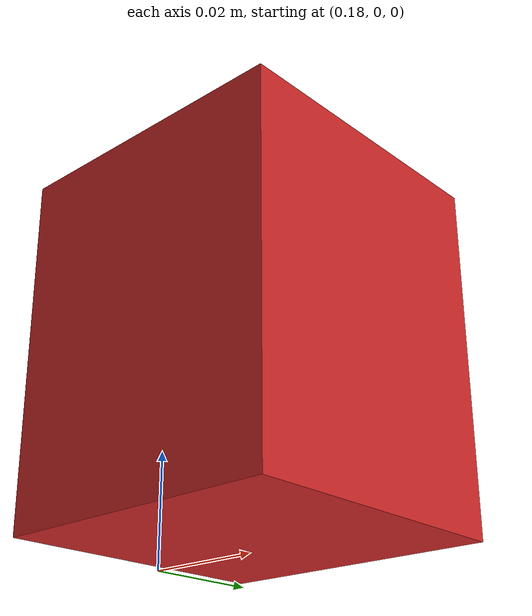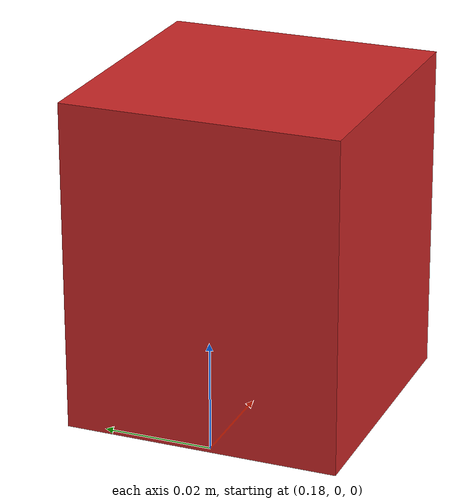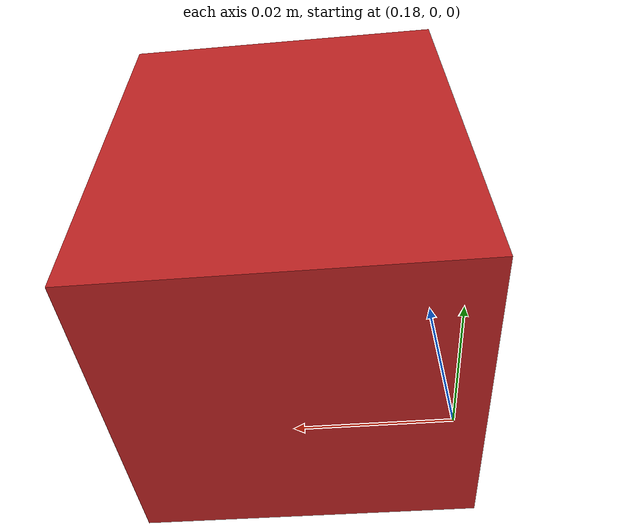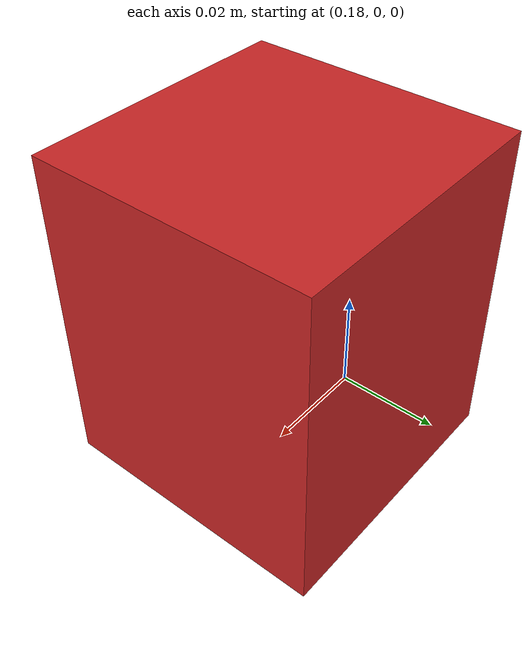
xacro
<?xml version="1.0"?>
<robot name="box">

<link name="base_link">
  <collision>
    <origin xyz="0.2 0 0.032" rpy="0 0 0"/>
    <geometry>
      <box size="0.05 0.05 0.06" />
    </geometry>
  </collision>

  <visual>
    <origin xyz="0.2 0 0.032" rpy="0 0 0"/>
    <geometry>
      <box size="0.05 0.05 0.06" />
    </geometry>
  </visual>

  <inertial>
    <origin xyz="0.2 0 0.032" rpy="0 0 0" />
    <mass value="0.05" />
    <inertia
      ixx="2.5417e-5" ixy="0.0" ixz="0.0"
      iyy="2.5417e-5" iyz="0.0"
      izz="2.0833e-5" />
  </inertial>
  </link>

<gazebo reference="base_link">
  <material>Gazebo/Red</material>
    <mu1>2.0</mu1>
    <mu2>2.0</mu2>
</gazebo>

</robot>
